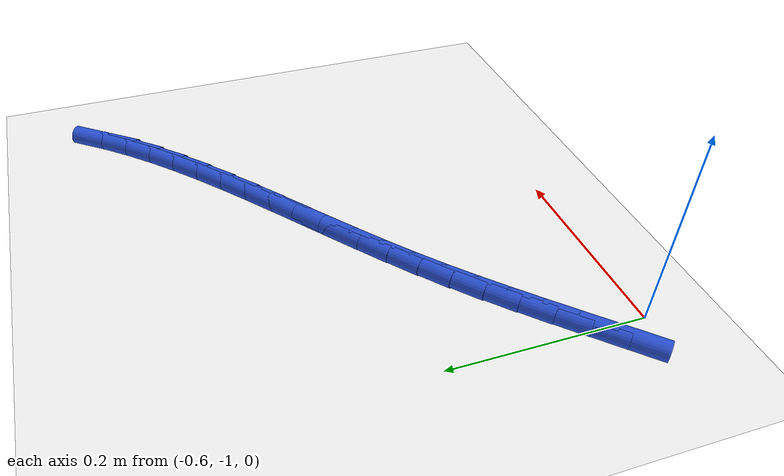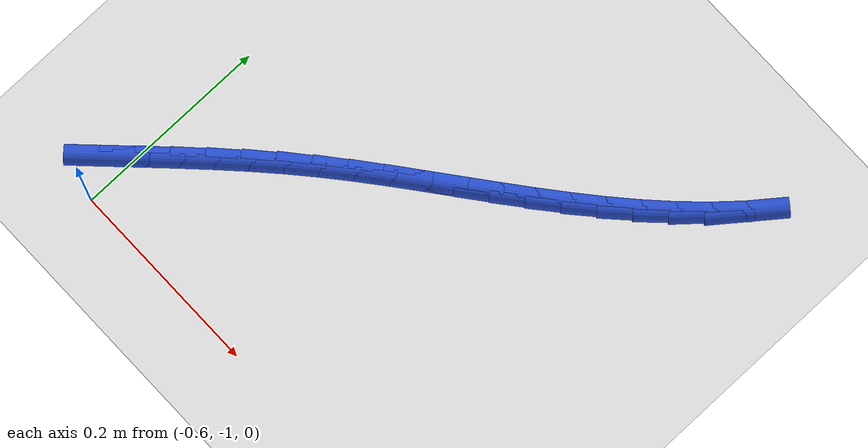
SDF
<sdf version="1.6">
 <world name="default">
  <model name="ground_plane">
   <static>1</static>
   <link name="link">
    <collision name="collision">
     <geometry><plane><normal>0 0 1</normal><size>100 100</size></plane></geometry>
     <surface><friction><ode><mu>100</mu><mu2>50</mu2></ode></friction></surface>
    </collision>
    <visual name="visual">
     <cast_shadows>0</cast_shadows>
     <geometry><plane><normal>0 0 1</normal><size>100 100</size></plane></geometry>
     <material>
      <script><uri>file://media/materials/scripts/gazebo.material</uri><name>Gazebo/WhiteGlow</name></script>
     </material>
    </visual>
   </link>
  </model>
  <model name="line">
   <link name="link_184">
    <pose>-0.619377244723048 -0.9615741243628839 0.01 0 1.57 0.792978590367567</pose>
    <collision name="collision">
     <geometry><cylinder><radius>0.01</radius><length>0.08</length></cylinder></geometry>
    </collision>
    <visual name="visual">
     <material>
      <script><name>Gazebo/Blue</name><uri>file://media/materials/scripts/gazebo.material</uri></script>
     </material>
     <geometry><cylinder><radius>0.01</radius><length>0.08</length></cylinder></geometry>
    </visual>
   </link>
   <link name="link_185">
    <pose>-0.5961127023017427 -0.9379541706348098 0.01 0 1.57 0.7906902510594884</pose>
    <collision name="collision">
     <geometry><cylinder><radius>0.01</radius><length>0.08</length></cylinder></geometry>
    </collision>
    <visual name="visual">
     <material>
      <script><name>Gazebo/Blue</name><uri>file://media/materials/scripts/gazebo.material</uri></script>
     </material>
     <geometry><cylinder><radius>0.01</radius><length>0.08</length></cylinder></geometry>
    </visual>
   </link>
   <link name="link_186">
    <pose>-0.572940159625869 -0.9145350585357196 0.01 0 1.57 0.7828075966796055</pose>
    <collision name="collision">
     <geometry><cylinder><radius>0.01</radius><length>0.08</length></cylinder></geometry>
    </collision>
    <visual name="visual">
     <material>
      <script><name>Gazebo/Blue</name><uri>file://media/materials/scripts/gazebo.material</uri></script>
     </material>
     <geometry><cylinder><radius>0.01</radius><length>0.08</length></cylinder></geometry>
    </visual>
   </link>
   <link name="link_187">
    <pose>-0.5496768256017416 -0.8913919437822209 0.01 0 1.57 0.769319842273882</pose>
    <collision name="collision">
     <geometry><cylinder><radius>0.01</radius><length>0.08</length></cylinder></geometry>
    </collision>
    <visual name="visual">
     <material>
      <script><name>Gazebo/Blue</name><uri>file://media/materials/scripts/gazebo.material</uri></script>
     </material>
     <geometry><cylinder><radius>0.01</radius><length>0.08</length></cylinder></geometry>
    </visual>
   </link>
   <link name="link_188">
    <pose>-0.5261399091356732 -0.868599982090919 0.01 0 1.57 0.7503031267260345</pose>
    <collision name="collision">
     <geometry><cylinder><radius>0.01</radius><length>0.08</length></cylinder></geometry>
    </collision>
    <visual name="visual">
     <material>
      <script><name>Gazebo/Blue</name><uri>file://media/materials/scripts/gazebo.material</uri></script>
     </material>
     <geometry><cylinder><radius>0.01</radius><length>0.08</length></cylinder></geometry>
    </visual>
   </link>
   <link name="link_189">
    <pose>-0.5021466191339775 -0.8462343291784205 0.01 0 1.57 0.7259577628915629</pose>
    <collision name="collision">
     <geometry><cylinder><radius>0.01</radius><length>0.08</length></cylinder></geometry>
    </collision>
    <visual name="visual">
     <material>
      <script><name>Gazebo/Blue</name><uri>file://media/materials/scripts/gazebo.material</uri></script>
     </material>
     <geometry><cylinder><radius>0.01</radius><length>0.08</length></cylinder></geometry>
    </visual>
   </link>
   <link name="link_190">
    <pose>-0.4775149460539112 -0.8243696759025302 0.01 0 1.57 0.7002261804336415</pose>
    <collision name="collision">
     <geometry><cylinder><radius>0.01</radius><length>0.08</length></cylinder></geometry>
    </collision>
    <visual name="visual">
     <material>
      <script><name>Gazebo/Blue</name><uri>file://media/materials/scripts/gazebo.material</uri></script>
     </material>
     <geometry><cylinder><radius>0.01</radius><length>0.08</length></cylinder></geometry>
    </visual>
   </link>
   <link name="link_191">
    <pose>-0.45217339376074583 -0.8030149808348153 0.01 0 1.57 0.6805894184613537</pose>
    <collision name="collision">
     <geometry><cylinder><radius>0.01</radius><length>0.08</length></cylinder></geometry>
    </collision>
    <visual name="visual">
     <material>
      <script><name>Gazebo/Blue</name><uri>file://media/materials/scripts/gazebo.material</uri></script>
     </material>
     <geometry><cylinder><radius>0.01</radius><length>0.08</length></cylinder></geometry>
    </visual>
   </link>
   <link name="link_192">
    <pose>-0.4262742603415067 -0.7820460919487032 0.01 0 1.57 0.6677738948979438</pose>
    <collision name="collision">
     <geometry><cylinder><radius>0.01</radius><length>0.08</length></cylinder></geometry>
    </collision>
    <visual name="visual">
     <material>
      <script><name>Gazebo/Blue</name><uri>file://media/materials/scripts/gazebo.material</uri></script>
     </material>
     <geometry><cylinder><radius>0.01</radius><length>0.08</length></cylinder></geometry>
    </visual>
   </link>
   <link name="link_193">
    <pose>-0.39999688279381856 -0.7613227747400028 0.01 0 1.57 0.6616386214013819</pose>
    <collision name="collision">
     <geometry><cylinder><radius>0.01</radius><length>0.08</length></cylinder></geometry>
    </collision>
    <visual name="visual">
     <material>
      <script><name>Gazebo/Blue</name><uri>file://media/materials/scripts/gazebo.material</uri></script>
     </material>
     <geometry><cylinder><radius>0.01</radius><length>0.08</length></cylinder></geometry>
    </visual>
   </link>
   <link name="link_194">
    <pose>-0.3735205981153059 -0.7407047947045212 0.01 0 1.57 0.6621002909258934</pose>
    <collision name="collision">
     <geometry><cylinder><radius>0.01</radius><length>0.08</length></cylinder></geometry>
    </collision>
    <visual name="visual">
     <material>
      <script><name>Gazebo/Blue</name><uri>file://media/materials/scripts/gazebo.material</uri></script>
     </material>
     <geometry><cylinder><radius>0.01</radius><length>0.08</length></cylinder></geometry>
    </visual>
   </link>
   <link name="link_195">
    <pose>-0.3470247433035928 -0.7200519173380664 0.01 0 1.57 0.6691393825579744</pose>
    <collision name="collision">
     <geometry><cylinder><radius>0.01</radius><length>0.08</length></cylinder></geometry>
    </collision>
    <visual name="visual">
     <material>
      <script><name>Gazebo/Blue</name><uri>file://media/materials/scripts/gazebo.material</uri></script>
     </material>
     <geometry><cylinder><radius>0.01</radius><length>0.08</length></cylinder></geometry>
    </visual>
   </link>
   <link name="link_196">
    <pose>-0.3206886553563053 -0.6992239081364474 0.01 0 1.57 0.6827989057487843</pose>
    <collision name="collision">
     <geometry><cylinder><radius>0.01</radius><length>0.08</length></cylinder></geometry>
    </collision>
    <visual name="visual">
     <material>
      <script><name>Gazebo/Blue</name><uri>file://media/materials/scripts/gazebo.material</uri></script>
     </material>
     <geometry><cylinder><radius>0.01</radius><length>0.08</length></cylinder></geometry>
    </visual>
   </link>
   <link name="link_197">
    <pose>-0.29469167127106743 -0.678080532595472 0.01 0 1.57 0.7031758983912182</pose>
    <collision name="collision">
     <geometry><cylinder><radius>0.01</radius><length>0.08</length></cylinder></geometry>
    </collision>
    <visual name="visual">
     <material>
      <script><name>Gazebo/Blue</name><uri>file://media/materials/scripts/gazebo.material</uri></script>
     </material>
     <geometry><cylinder><radius>0.01</radius><length>0.08</length></cylinder></geometry>
    </visual>
   </link>
   <link name="link_198">
    <pose>-0.2692131280455039 -0.6564815562109483 0.01 0 1.57 0.7304047733602201</pose>
    <collision name="collision">
     <geometry><cylinder><radius>0.01</radius><length>0.08</length></cylinder></geometry>
    </collision>
    <visual name="visual">
     <material>
      <script><name>Gazebo/Blue</name><uri>file://media/materials/scripts/gazebo.material</uri></script>
     </material>
     <geometry><cylinder><radius>0.01</radius><length>0.08</length></cylinder></geometry>
    </visual>
   </link>
   <link name="link_199">
    <pose>-0.24443236267723875 -0.6342867444786835 0.01 0 1.57 0.7646308142771056</pose>
    <collision name="collision">
     <geometry><cylinder><radius>0.01</radius><length>0.08</length></cylinder></geometry>
    </collision>
    <visual name="visual">
     <material>
      <script><name>Gazebo/Blue</name><uri>file://media/materials/scripts/gazebo.material</uri></script>
     </material>
     <geometry><cylinder><radius>0.01</radius><length>0.08</length></cylinder></geometry>
    </visual>
   </link>
   <link name="link_200">
    <pose>-0.22052871216389783 -0.6113558628944868 0.01 0 1.57 0.8059718316055648</pose>
    <collision name="collision">
     <geometry><cylinder><radius>0.01</radius><length>0.08</length></cylinder></geometry>
    </collision>
    <visual name="visual">
     <material>
      <script><name>Gazebo/Blue</name><uri>file://media/materials/scripts/gazebo.material</uri></script>
     </material>
     <geometry><cylinder><radius>0.01</radius><length>0.08</length></cylinder></geometry>
    </visual>
   </link>
   <link name="link_201">
    <pose>-0.19768151350310528 -0.5875486769541661 0.01 0 1.57 0.8544666676681131</pose>
    <collision name="collision">
     <geometry><cylinder><radius>0.01</radius><length>0.08</length></cylinder></geometry>
    </collision>
    <visual name="visual">
     <material>
      <script><name>Gazebo/Blue</name><uri>file://media/materials/scripts/gazebo.material</uri></script>
     </material>
     <geometry><cylinder><radius>0.01</radius><length>0.08</length></cylinder></geometry>
    </visual>
   </link>
   <link name="link_202">
    <pose>-0.1760701036924858 -0.5627249521535292 0.01 0 1.57 0.910005600864208</pose>
    <collision name="collision">
     <geometry><cylinder><radius>0.01</radius><length>0.08</length></cylinder></geometry>
    </collision>
    <visual name="visual">
     <material>
      <script><name>Gazebo/Blue</name><uri>file://media/materials/scripts/gazebo.material</uri></script>
     </material>
     <geometry><cylinder><radius>0.01</radius><length>0.08</length></cylinder></geometry>
    </visual>
   </link>
  </model>
 </world>
</sdf>
